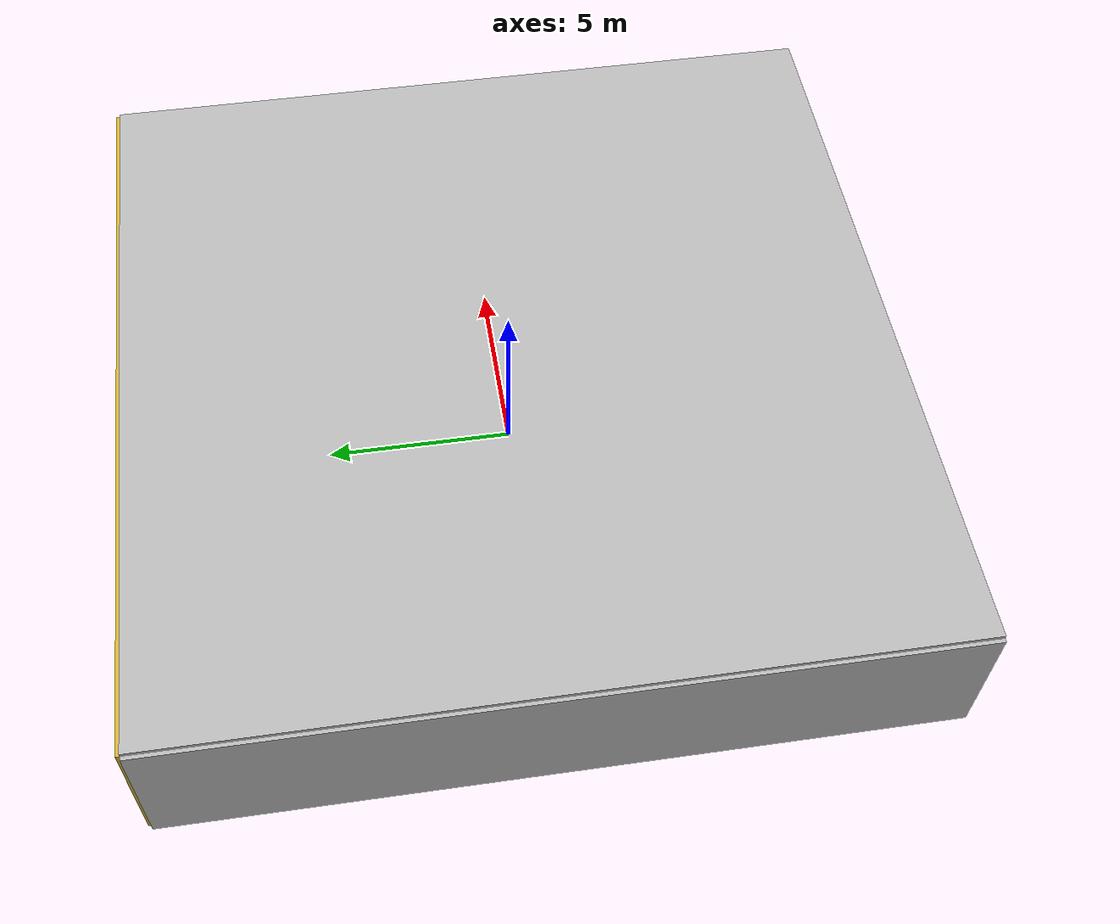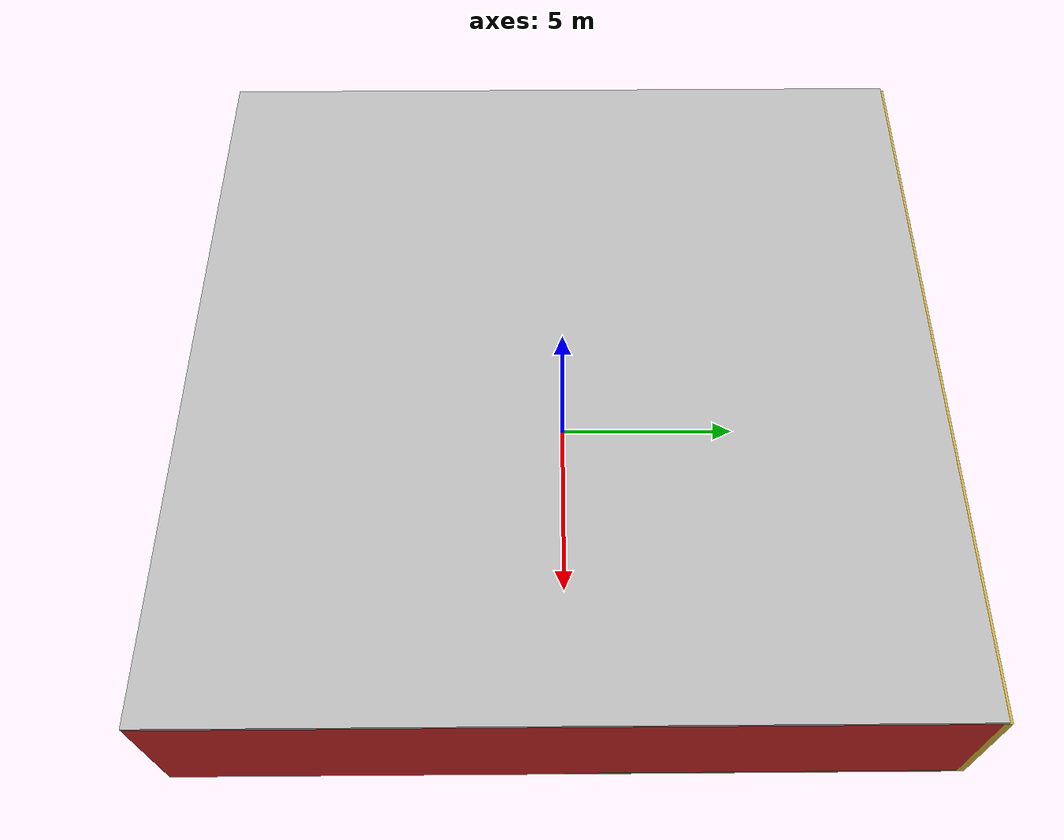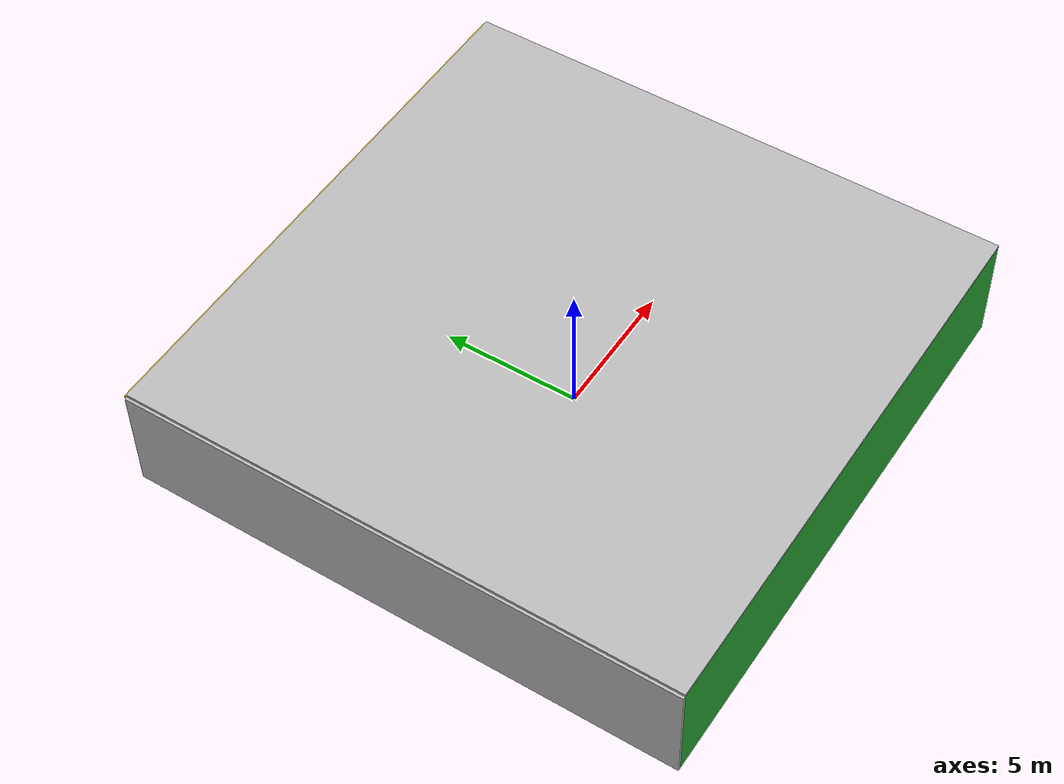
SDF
<sdf version="1.4">
 <world name="default">
  <physics type="ode">
   <max_step_size>0.001</max_step_size>
   <real_time_factor>1</real_time_factor>
   <real_time_update_rate>1000</real_time_update_rate>
   <gravity>0 0 -9.8</gravity>
  </physics>
  <scene><ambient>0.4 0.4 0.4 1</ambient><background>0.7 0.7 0.7 1</background><shadows>1</shadows></scene>
  <model name="Surrounding">
   <static>1</static>
   <link name="Ceiling">
    <collision name="Ceiling_Collision"><geometry><box><size>20 20 0.1</size></box></geometry></collision>
    <visual name="Ceiling_Visual">
     <geometry><box><size>20 20 0.1</size></box></geometry>
     <material>
      <script><uri>file://media/materials/scripts/gazebo.material</uri><name>Gazebo/LightOff</name></script>
     </material>
    </visual>
    <pose>0 0 4.05 0 0 0</pose>
   </link>
   <link name="Wall_South">
    <collision name="Wall_South_Collision">
     <geometry><box><size>20 0 4</size></box></geometry>
     <pose>0 0 2 0 -0 0</pose>
    </collision>
    <visual name="Wall_South_Visual">
     <pose>0 0 2 0 -0 0</pose>
     <geometry><box><size>20 0 4</size></box></geometry>
     <material>
      <script><uri>file://media/materials/scripts/gazebo.material</uri><name>Gazebo/Green</name></script>
     </material>
    </visual>
    <velocity_decay><linear>0</linear><angular>0</angular></velocity_decay>
    <pose>0 -10 0 0 -0 0</pose>
   </link>
   <link name="Wall_East">
    <collision name="Wall_21_Collision">
     <geometry><box><size>20 0 4</size></box></geometry>
     <pose>0 0 2 0 -0 0</pose>
    </collision>
    <visual name="Wall_21_Visual">
     <pose>0 0 2 0 -0 0</pose>
     <geometry><box><size>20 0 4</size></box></geometry>
     <material>
      <script><uri>file://media/materials/scripts/gazebo.material</uri><name>Gazebo/RedBright</name></script>
     </material>
    </visual>
    <velocity_decay><linear>0</linear><angular>0</angular></velocity_decay>
    <pose>10 0 0 0 -0 1.5708</pose>
   </link>
   <link name="Wall_North">
    <collision name="Wall_22_Collision">
     <geometry><box><size>20 0.2 4</size></box></geometry>
     <pose>0 0 2 0 -0 0</pose>
    </collision>
    <visual name="Wall_22_Visual">
     <pose>0 0 2 0 -0 0</pose>
     <geometry><box><size>20 0.2 4</size></box></geometry>
     <material>
      <script><uri>file://media/materials/scripts/gazebo.material</uri><name>Gazebo/Gold</name></script>
     </material>
    </visual>
    <velocity_decay><linear>0</linear><angular>0</angular></velocity_decay>
    <pose>0 10 0 0 -0 0</pose>
   </link>
   <link name="Wall_West">
    <collision name="Wall_23_Collision">
     <geometry><box><size>20 0.2 4</size></box></geometry>
     <pose>0 0 2 0 -0 0</pose>
    </collision>
    <visual name="Wall_23_Visual">
     <pose>0 0 2 0 -0 0</pose>
     <geometry><box><size>20 0.2 4</size></box></geometry>
     <material>
      <script><uri>file://media/materials/scripts/gazebo.material</uri><name>Gazebo/LightOff</name></script>
     </material>
    </visual>
    <velocity_decay><linear>0</linear><angular>0</angular></velocity_decay>
    <pose>-10 0 0 0 0 -1.5708</pose>
   </link>
   <link name="Ground_link">
    <collision name="collision">
     <pose>0 0 .05 0 -0 0</pose>
     <geometry><box><size>20 20 0.1</size></box></geometry>
    </collision>
    <visual name="visual">
     <pose>0 0 .05 0 -0 0</pose>
     <geometry><box><size>20 20 0.1</size></box></geometry>
     <material>
      <script><uri>file://media/materials/scripts/gazebo.material</uri><name>Gazebo/GreenTransparent</name></script>
     </material>
    </visual>
   </link>
   <static>1</static>
  </model>
  <spherical_coordinates>
   <surface_model>EARTH_WGS84</surface_model>
   <latitude_deg>0</latitude_deg>
   <longitude_deg>0</longitude_deg>
   <elevation>0</elevation>
   <heading_deg>0</heading_deg>
  </spherical_coordinates>
  <light name="lightball_0" type="diffuse">
   <diffuse>0.8 0.8 0.8 1</diffuse>
   <specular>0.2 0.2 0.2 1</specular>
   <attenuation>
    <range>100</range>
    <constant>0.7</constant>
    <linear>0.01</linear>
    <quadratic>0.001</quadratic>
   </attenuation>
   <direction>-0.5 0.1 -0.9</direction>
   <pose>4.59689698864 4.1958742165 1.92073700699 0 0 0</pose>
  </light>
  <light name="lightball_1" type="diffuse">
   <diffuse>0.8 0.8 0.8 1</diffuse>
   <specular>0.2 0.2 0.2 1</specular>
   <attenuation>
    <range>100</range>
    <constant>0.7</constant>
    <linear>0.01</linear>
    <quadratic>0.001</quadratic>
   </attenuation>
   <direction>-0.5 0.1 -0.9</direction>
   <pose>9.2941242721 1.40298172382 1.34250010856 0 0 0</pose>
  </light>
  <light name="lightball_2" type="diffuse">
   <diffuse>0.8 0.8 0.8 1</diffuse>
   <specular>0.2 0.2 0.2 1</specular>
   <attenuation>
    <range>100</range>
    <constant>0.7</constant>
    <linear>0.01</linear>
    <quadratic>0.001</quadratic>
   </attenuation>
   <direction>-0.5 0.1 -0.9</direction>
   <pose>9.48687846991 6.39600318495 3.37225981305 0 0 0</pose>
  </light>
  <light name="lightball_3" type="diffuse">
   <diffuse>0.8 0.8 0.8 1</diffuse>
   <specular>0.2 0.2 0.2 1</specular>
   <attenuation>
    <range>100</range>
    <constant>0.7</constant>
    <linear>0.01</linear>
    <quadratic>0.001</quadratic>
   </attenuation>
   <direction>-0.5 0.1 -0.9</direction>
   <pose>8.68954509674 -6.86543858118 0.710698365036 0 0 0</pose>
  </light>
  <light name="lightball_4" type="diffuse">
   <diffuse>0.8 0.8 0.8 1</diffuse>
   <specular>0.2 0.2 0.2 1</specular>
   <attenuation>
    <range>100</range>
    <constant>0.7</constant>
    <linear>0.01</linear>
    <quadratic>0.001</quadratic>
   </attenuation>
   <direction>-0.5 0.1 -0.9</direction>
   <pose>-2.07041103953 -5.05263612068 1.94262951775 0 0 0</pose>
  </light>
  <light name="lightball_5" type="diffuse">
   <diffuse>0.8 0.8 0.8 1</diffuse>
   <specular>0.2 0.2 0.2 1</specular>
   <attenuation>
    <range>100</range>
    <constant>0.7</constant>
    <linear>0.01</linear>
    <quadratic>0.001</quadratic>
   </attenuation>
   <direction>-0.5 0.1 -0.9</direction>
   <pose>-4.66178237809 -2.62296235214 2.54600251631 0 0 0</pose>
  </light>
  <include><uri>model://cabinet</uri><pose>-7.80073475578 -4.06024050976 0 0 0 1.16980085639</pose></include>
  <include><uri>model://table</uri><pose>-8.17525375548 0.78474642532 0 0 0 2.842092395</pose></include>
  <include>
   <uri>model://textured_shapes</uri>
   <pose>-7.10647402737 7.54818576055 0 0 0 0.841241575826</pose>
  </include>
  <include>
   <uri>model://textured_shapes</uri>
   <pose>-4.95807708483 0.749602226754 0 0 0 2.90703965143</pose>
  </include>
  <include><uri>model://cabinet</uri><pose>3.96743139189 -0.934415056035 0 0 0 2.31517527175</pose></include>
 </world>
</sdf>

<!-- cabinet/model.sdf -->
<sdf version="1.5">
  <model name="cabinet">
    <static>true</static>
    <link name="cabinet_bottom_plate">
      <inertial>
        <pose>0 0 -1 0 0 0</pose>
        <inertia>
          <ixx>2.050000</ixx>
          <ixy>0</ixy>
          <ixz>0</ixz>
          <iyy>2.050000</iyy>
          <iyz>0</iyz>
          <izz>2.050000</izz>
        </inertia>
        <mass>25.000000</mass>
      </inertial>
      <collision name="cabinet_bottom_plate_geom">
        <pose>0 0 0.010000 0 0 0</pose>
        <geometry>
          <box>
            <size>0.450000 0.450000 0.020000</size>
          </box>
        </geometry>
      </collision>
      <visual name="cabinet_bottom_plate_geom_visual">
        <pose>0 0 0.010000 0 0 0</pose>
        <geometry>
          <box>
            <size>0.450000 0.450000 0.020000</size>
          </box>
        </geometry>
        <material>
          <script>
            <uri>model://media/materials/scripts/gazebo.material</uri>
            <name>Gazebo/Wood</name>
          </script>
        </material>
      </visual>
      <collision name="cabinet_bottom_plate_geom_cabinet_back_plate">
        <pose>0.235000 0 0.510000 0 0 0</pose>
        <geometry>
          <box>
            <size>0.020000 0.450000 1.020000</size>
          </box>
        </geometry>
      </collision>
      <visual name="cabinet_bottom_plate_geom_cabinet_back_plate_visual">
        <pose>0.235000 0 0.510000 0 0 0</pose>
        <geometry>
          <box>
            <size>0.020000 0.450000 1.020000</size>
          </box>
        </geometry>
        <material>
          <script>
            <uri>model://media/materials/scripts/gazebo.material</uri>
            <name>Gazebo/Wood</name>
          </script>
        </material>
      </visual>
      <collision name="cabinet_bottom_plate_geom_cabinet_left_plate">
        <pose>0 0.235000 0.510000 0 0 0</pose>
        <geometry>
          <box>
            <size>0.450000 0.020000 1.020000</size>
          </box>
        </geometry>
      </collision>
      <visual name="cabinet_bottom_plate_geom_cabinet_left_plate_visual">
        <pose>0 0.235000 0.510000 0 0 0</pose>
        <geometry>
          <box>
            <size>0.450000 0.020000 1.020000</size>
          </box>
        </geometry>
        <material>
          <script>
            <uri>model://media/materials/scripts/gazebo.material</uri>
            <name>Gazebo/Wood</name>
          </script>
        </material>
      </visual>
      <collision name="cabinet_bottom_plate_geom_cabinet_middle_plate">
        <pose>0 0 0.510000 0 0 0</pose>
        <geometry>
          <box>
            <size>0.450000 0.450000 0.020000</size>
          </box>
        </geometry>
      </collision>
      <visual name="cabinet_bottom_plate_geom_cabinet_middle_plate_visual">
        <pose>0 0 0.510000 0 0 0</pose>
        <geometry>
          <box>
            <size>0.450000 0.450000 0.020000</size>
          </box>
        </geometry>
        <material>
          <script>
            <uri>model://media/materials/scripts/gazebo.material</uri>
            <name>Gazebo/Wood</name>
          </script>
        </material>
      </visual>
      <collision name="cabinet_bottom_plate_geom_cabinet_right_plate">
        <pose>0 -0.235000 0.510000 0 0 0</pose>
        <geometry>
          <box>
            <size>0.450000 0.020000 1.020000</size>
          </box>
        </geometry>
      </collision>
      <visual name="cabinet_bottom_plate_geom_cabinet_right_plate_visual">
        <pose>0 -0.235000 0.510000 0 0 0</pose>
        <geometry>
          <box>
            <size>0.450000 0.020000 1.020000</size>
          </box>
        </geometry>
        <material>
          <script>
            <uri>model://media/materials/scripts/gazebo.material</uri>
            <name>Gazebo/Wood</name>
          </script>
        </material>
      </visual>
      <collision name="cabinet_bottom_plate_geom_cabinet_top_plate">
        <pose>0 0 1.010000 0 0 0</pose>
        <geometry>
          <box>
            <size>0.450000 0.450000 0.020000</size>
          </box>
        </geometry>
      </collision>
      <visual name="cabinet_bottom_plate_geom_cabinet_top_plate_visual">
        <pose>0 0 1.010000 0 0 0</pose>
        <geometry>
          <box>
            <size>0.450000 0.450000 0.020000</size>
          </box>
        </geometry>
        <material>
          <script>
            <uri>model://media/materials/scripts/gazebo.material</uri>
            <name>Gazebo/Wood</name>
          </script>
        </material>
      </visual>
    </link>
  </model>
</sdf>

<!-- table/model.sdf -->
<sdf version="1.5">
  <model name="table">
    <static>true</static>
    <link name="link">
      <collision name="surface">
        <pose>0 0 1.0 0 0 0</pose>
        <geometry>
          <box>
            <size>1.5 0.8 0.03</size>
          </box>
        </geometry>
        <surface>
          <friction>
            <ode>
              <mu>0.6</mu>
              <mu2>0.6</mu2>
            </ode>
          </friction>
        </surface>
      </collision>
      <visual name="visual1">
        <pose>0 0 1.0 0 0 0</pose>
        <geometry>
          <box>
            <size>1.5 0.8 0.03</size>
          </box>
        </geometry>
        <material>
          <script>
            <uri>model://media/materials/scripts/gazebo.material</uri>
            <name>Gazebo/Wood</name>
          </script>
        </material>
      </visual>
      <collision name="front_left_leg">
        <pose>0.68 0.38 0.5 0 0 0</pose>
        <geometry>
          <cylinder>
            <radius>0.02</radius>
            <length>1.0</length>
          </cylinder>
        </geometry>
      </collision>
      <visual name="front_left_leg">
        <pose>0.68 0.38 0.5 0 0 0</pose>
        <geometry>
          <cylinder>
            <radius>0.02</radius>
            <length>1.0</length>
          </cylinder>
        </geometry>
        <material>
          <script>
            <uri>model://media/materials/scripts/gazebo.material</uri>
            <name>Gazebo/Grey</name>
          </script>
        </material>
      </visual>
      <collision name="front_right_leg">
        <pose>0.68 -0.38 0.5 0 0 0</pose>
        <geometry>
          <cylinder>
            <radius>0.02</radius>
            <length>1.0</length>
          </cylinder>
        </geometry>
      </collision>
      <visual name="front_right_leg">
        <pose>0.68 -0.38 0.5 0 0 0</pose>
        <geometry>
          <cylinder>
            <radius>0.02</radius>
            <length>1.0</length>
          </cylinder>
        </geometry>
        <material>
          <script>
            <uri>model://media/materials/scripts/gazebo.material</uri>
            <name>Gazebo/Grey</name>
          </script>
        </material>
      </visual>
      <collision name="back_right_leg">
        <pose>-0.68 -0.38 0.5 0 0 0</pose>
        <geometry>
          <cylinder>
            <radius>0.02</radius>
            <length>1.0</length>
          </cylinder>
        </geometry>
      </collision>
      <visual name="back_right_leg">
        <pose>-0.68 -0.38 0.5 0 0 0</pose>
        <geometry>
          <cylinder>
            <radius>0.02</radius>
            <length>1.0</length>
          </cylinder>
        </geometry>
        <material>
          <script>
            <uri>model://media/materials/scripts/gazebo.material</uri>
            <name>Gazebo/Grey</name>
          </script>
        </material>
      </visual>
      <collision name="back_left_leg">
        <pose>-0.68 0.38 0.5 0 0 0</pose>
        <geometry>
          <cylinder>
            <radius>0.02</radius>
            <length>1.0</length>
          </cylinder>
        </geometry>
      </collision>
      <visual name="back_left_leg">
        <pose>-0.68 0.38 0.5 0 0 0</pose>
        <geometry>
          <cylinder>
            <radius>0.02</radius>
            <length>1.0</length>
          </cylinder>
        </geometry>
        <material>
          <script>
            <uri>model://media/materials/scripts/gazebo.material</uri>
            <name>Gazebo/Grey</name>
          </script>
        </material>
      </visual>
    </link>
  </model>
</sdf>

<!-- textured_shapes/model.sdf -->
<sdf version="1.6">
  <model name="textured_shapes">
    <pose>0 0 0.5 0 0 0</pose>
    <link name="box">
      <pose>0 -1.5 0 0 0 0</pose>
      <collision name="collision">
        <geometry>
          <box>
            <size>1 1 1</size>
          </box>
        </geometry>
      </collision>
      <visual name="visual">
        <geometry>
          <box>
            <size>1 1 1</size>
          </box>
        </geometry>
        <material>
          <script>
            <uri>model://../model_source/models/textured_shapes/materials/scripts</uri>
            <uri>model://../model_source/models/textured_shapes/materials/textures</uri>
            <name>TexturedShape/Squares</name>
          </script>
        </material>
      </visual>
    </link>
    <link name="sphere">
      <collision name="collision">
        <geometry>
          <sphere>
            <radius>0.5</radius>
          </sphere>
        </geometry>
      </collision>
      <visual name="visual">
        <geometry>
          <sphere>
            <radius>0.5</radius>
          </sphere>
        </geometry>
        <material>
          <script>
            <uri>model://../model_source/models/textured_shapes/materials/scripts</uri>
            <uri>model://../model_source/models/textured_shapes/materials/textures</uri>
            <name>TexturedShape/Squares</name>
          </script>
        </material>
      </visual>
    </link>
    <link name="cylinder">
      <pose>0 1.5 0 0 0 0</pose>
      <collision name="collision">
        <geometry>
          <cylinder>
            <radius>0.5</radius>
            <length>1</length>
          </cylinder>
        </geometry>
      </collision>
      <visual name="visual">
        <geometry>
          <cylinder>
            <radius>0.5</radius>
            <length>1</length>
          </cylinder>
        </geometry>
        <material>
          <script>
            <uri>model://../model_source/models/textured_shapes/materials/scripts</uri>
            <uri>model://../model_source/models/textured_shapes/materials/textures</uri>
            <name>TexturedShape/Squares</name>
          </script>
        </material>
      </visual>
    </link>
  </model>
</sdf>
